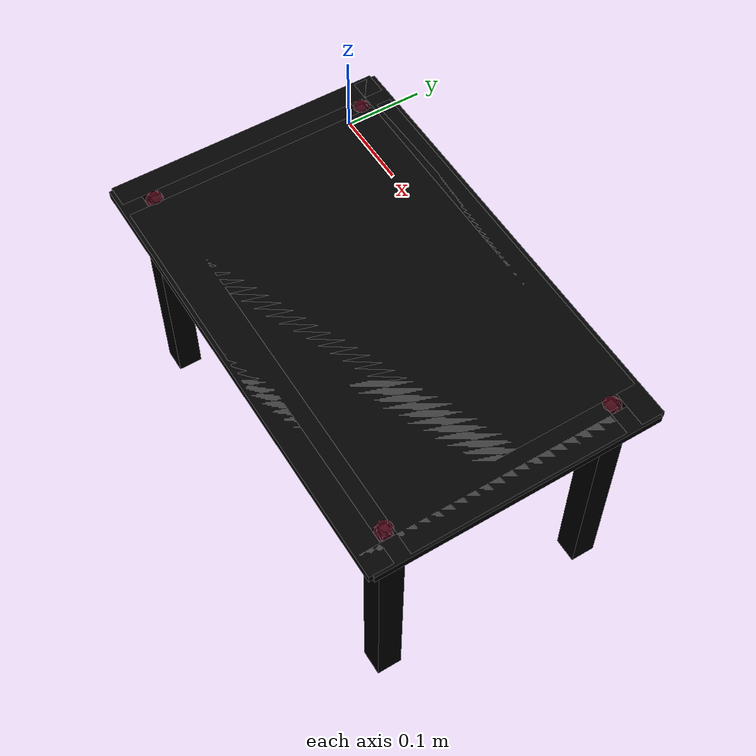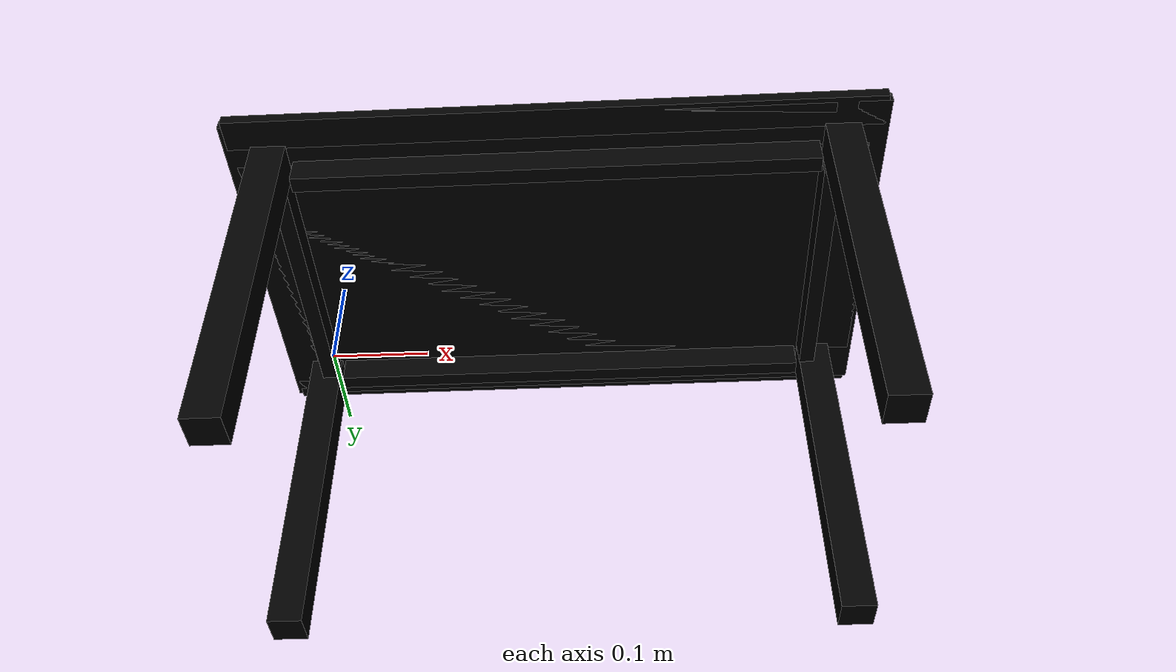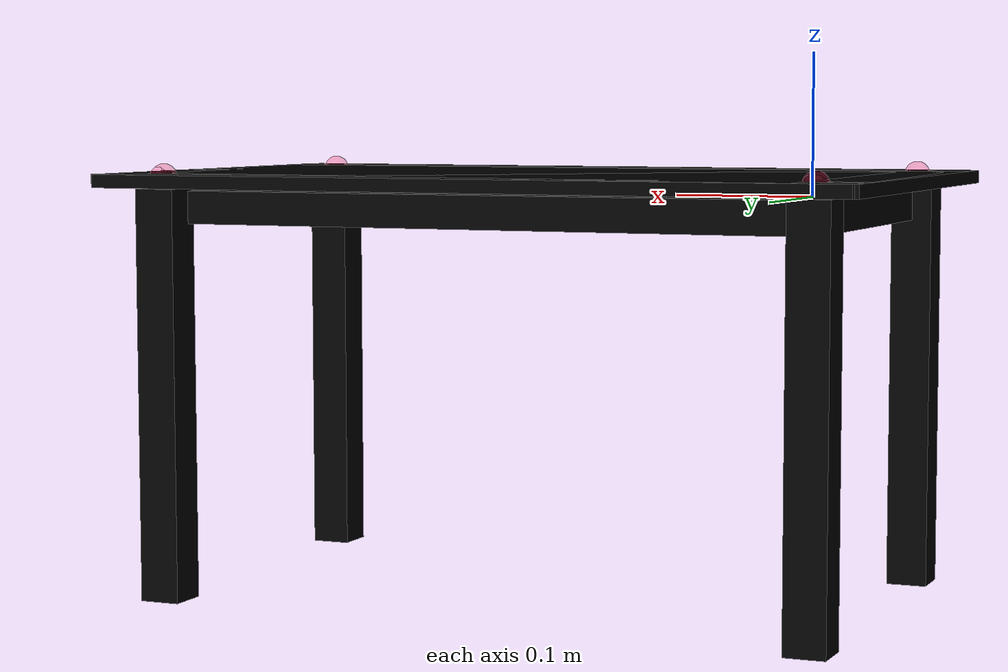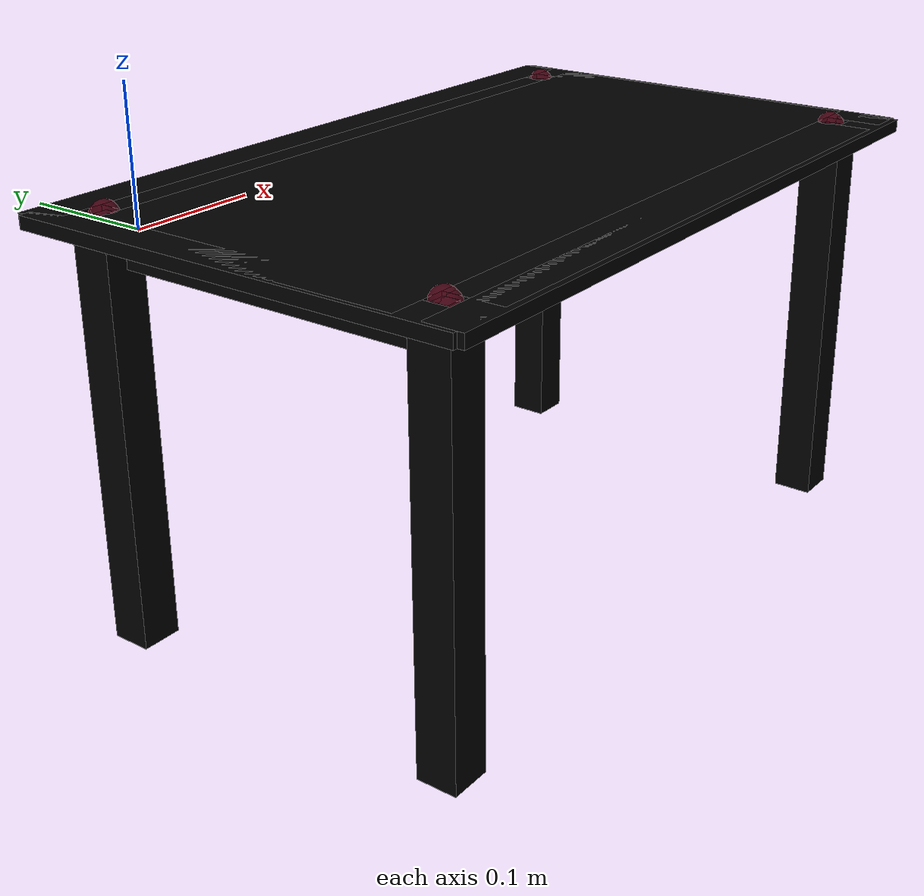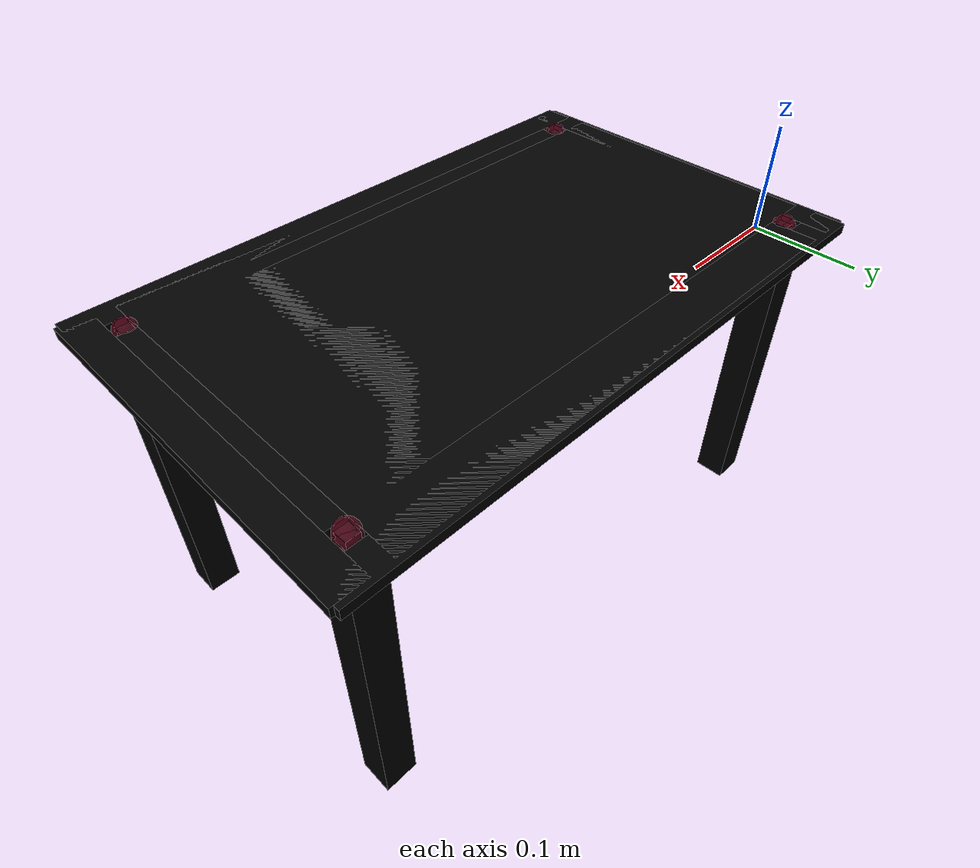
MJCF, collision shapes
<mujoco model="table_bjorkudden_0207">
    <custom>
        <numeric data="0.166806 0.063341 0.015845 0.707107 0.0 0.707107 0.0" name="0_part0_initpos"/>
        <numeric data="-0.23001 0.109956 0.018558 0.0 -0.707065 0.707148 0.0" name="4_part4_initpos"/>
        <numeric data="0.166764 -0.07 0.015845 0.5 -0.5 0.5 -0.5" name="3_part3_initpos"/>
        <numeric data="0.175697 0.33 0.015845 0.5 -0.5 0.5 -0.5" name="2_part2_initpos"/>
        <numeric data="0.176754 0.2 0.015845 0.707107 0.0 0.707107 0.0" name="1_part1_initpos"/>
    </custom>
    <asset>
        <mesh file="table_bjorkudden_0207/1.stl" name="part1" scale="0.0005 0.0005 0.0005"/>
        <mesh file="table_bjorkudden_0207/5.stl" name="part5" scale="0.0005 0.0005 0.0005"/>
        <mesh file="table_bjorkudden_0207/4.stl" name="part4" scale="0.0005 0.0005 0.0005"/>
        <mesh file="table_bjorkudden_0207/3.stl" name="part3" scale="0.0005 0.0005 0.0005"/>
        <mesh file="table_bjorkudden_0207/2.stl" name="part2" scale="0.0005 0.0005 0.0005"/>
    </asset>
    <equality>
        <weld active="false" body1="0_part0" body2="4_part4" solimp="1 1 0.5" solref="0.01 0.3"/>
        <weld active="false" body1="2_part2" body2="4_part4" solimp="1 1 0.5" solref="0.01 0.3"/>
        <weld active="false" body1="3_part3" body2="4_part4" solimp="1 1 0.5" solref="0.01 0.3"/>
        <weld active="false" body1="1_part1" body2="4_part4" solimp="1 1 0.5" solref="0.01 0.3"/>
        <weld active="false" body1="0_part0" body2="4_part4" solimp="1 1 0.5" solref="0.01 0.3"/>
        <weld active="false" body1="2_part2" body2="4_part4" solimp="1 1 0.5" solref="0.01 0.3"/>
        <weld active="false" body1="1_part1" body2="4_part4" solimp="1 1 0.5" solref="0.01 0.3"/>
        <weld active="false" body1="3_part3" body2="4_part4" solimp="1 1 0.5" solref="0.01 0.3"/>
    </equality>
    <worldbody>
        <body name="0_part0" pos="0.5064125 -0.263525 -0.15875" quat="1 0 0 0">
            <site group="1" name="0_part0_ltgt_site0" pos="0 -0.02 0" rgba="0 0 0 0" size="0.01 0.01 0.01"
                  type="sphere"/>
            <site group="1" name="0_part0_rtgt_site0" pos="0 0.02 0" rgba="0 0 0 0" size="0.01 0.01 0.01"
                  type="sphere"/>
            <geom conaffinity="0" contype="0" density="0" mesh="part1" name="0_part0_mesh" pos="0.0 0.0 0.0"
                  rgba="0.82 0.71 0.55 1" type="mesh"/>
            <site name="0_part0_horizontal_radius_site" pos="0.0 0.0 0.0" quat="1 0 0 0" rgba="0 0 0 0"
                  size="0.0005"/>
            <site name="0_part0_top_site" pos="0.0 0.0 0.15875" quat="1 0 0 0" rgba="0 0 0 0" size="0.0005"/>
            <site name="0_part0_bottom_site" pos="0.0 0.0 -0.15875" quat="1 0 0 0" rgba="0 0 0 0" size="0.0005"/>
            <site name="0_part0_corner_site8" pos="-0.015875 0.015875 0.15875" quat="1 0 0 0" rgba="0 0 0 0"
                  size="0.01"/>
            <site name="0_part0_corner_site7" pos="0.015875 0.015875 0.15875" quat="1 0 0 0" rgba="0 0 0 0"
                  size="0.01"/>
            <site name="0_part0_corner_site6" pos="0.015875 -0.015875 0.15875" quat="1 0 0 0" rgba="0 0 0 0"
                  size="0.01"/>
            <site name="0_part0_corner_site5" pos="-0.015875 -0.015875 0.15875" quat="1 0 0 0" rgba="0 0 0 0"
                  size="0.01"/>
            <site name="0_part0_corner_site4" pos="-0.015875 0.015875 -0.15875" quat="1 0 0 0" rgba="0 0 0 0"
                  size="0.01"/>
            <site name="0_part0_corner_site3" pos="0.015875 0.015875 -0.15875" quat="1 0 0 0" rgba="0 0 0 0"
                  size="0.01"/>
            <site name="0_part0_corner_site2" pos="0.015875 -0.015875 -0.15875" quat="1 0 0 0" rgba="0 0 0 0"
                  size="0.01"/>
            <site name="0_part0_corner_site1" pos="-0.015875 -0.015875 -0.15875" quat="1 0 0 0" rgba="0 0 0 0"
                  size="0.01"/>
            <site name="leg-top,0,90,180,270,conn_site4" pos="-0.000412505 0.000149995 0.168" quat="1 0 0 0"
                  rgba="0.9019 0.0980 0.2941 0.3" size="0.01"/>
            <geom density="50" name="noviz_collision_0_part0_0" pos="0.0 0.0 0.0" quat="1 0 0 0" rgba="0 0 0 0"
                  size="0.015875 0.015875 0.15875" solref="0.001 1" type="box"/>
            <geom density="50" name="noviz_collision_0_part0_1" pos="0.0 0.0 0.163" quat="1 0 0 0" rgba="0 0 0 0"
                  size="0.006 0.006 0.005" solref="0.001 1" type="box"/>
        </body>
        <body name="4_part4" pos="0.2492375122 -0.1206500061 -0.00698499845" quat="1 0 0 0">
            <freejoint/>
            <geom conaffinity="0" contype="0" density="0" mesh="part5" name="4_part4_mesh" pos="0.0 0.0 0.0"
                  rgba="0.82 0.71 0.55 1" type="mesh"/>
            <site name="4_part4_horizontal_radius_site" pos="0.0 0.0 0.0" quat="1 0 0 0" rgba="0 0 0 0"
                  size="0.0005"/>
            <site name="4_part4_top_site" pos="0.0 0.0 0.019685" quat="1 0 0 0" rgba="0 0 0 0" size="0.0005"/>
            <site name="4_part4_bottom_site" pos="0.0 0.0 -0.019685" quat="1 0 0 0" rgba="0 0 0 0" size="0.0005"/>
            <site name="4_part4_corner_site8" pos="-0.2985 0.18415 0.019685" quat="1 0 0 0" rgba="0 0 0 0"
                  size="0.01"/>
            <site name="4_part4_corner_site7" pos="0.2985 0.18415 0.019685" quat="1 0 0 0" rgba="0 0 0 0"
                  size="0.01"/>
            <site name="4_part4_corner_site6" pos="0.2985 -0.18415 0.019685" quat="1 0 0 0" rgba="0 0 0 0"
                  size="0.01"/>
            <site name="4_part4_corner_site5" pos="-0.2985 -0.18415 0.019685" quat="1 0 0 0" rgba="0 0 0 0"
                  size="0.01"/>
            <site name="4_part4_corner_site4" pos="-0.2985 0.18415 -0.019685" quat="1 0 0 0" rgba="0 0 0 0"
                  size="0.01"/>
            <site name="4_part4_corner_site3" pos="0.2985 0.18415 -0.019685" quat="1 0 0 0" rgba="0 0 0 0"
                  size="0.01"/>
            <site name="4_part4_corner_site2" pos="0.2985 -0.18415 -0.019685" quat="1 0 0 0" rgba="0 0 0 0"
                  size="0.01"/>
            <site name="4_part4_corner_site1" pos="-0.2985 -0.18415 -0.019685" quat="1 0 0 0" rgba="0 0 0 0"
                  size="0.01"/>
            <site name="top-leg,0,90,180,270,conn_site4" pos="0.2577625 -0.1445 0.015" quat="1 0 0 0"
                  rgba="0.9019 0.0980 0.2941 0.3" size="0.01"/>
            <site name="top-leg,0,90,180,270,conn_site3" pos="0.2577625 0.1445 0.015" quat="1 0 0 0"
                  rgba="0.9019 0.0980 0.2941 0.3" size="0.01"/>
            <site name="top-leg,0,90,180,270,conn_site2" pos="-0.2577375 0.1445 0.015" quat="1 0 0 0"
                  rgba="0.9019 0.0980 0.2941 0.3" size="0.01"/>
            <site name="top-leg,0,90,180,270,conn_site1" pos="-0.2577375 -0.1445 0.015" quat="1 0 0 0"
                  rgba="0.9019 0.0980 0.2941 0.3" size="0.01"/>
            <geom density="50" name="noviz_collision_4_part4_1" pos="0 0.13415 -0.007015" quat="1 0 0 0"
                  rgba="0 0 0 0"
                  size="0.23750 0.0075 0.0125" solref="0.001 1" type="box"/>
            <geom density="50" name="noviz_collision_4_part4_2" pos="0 -0.13435 -0.007015" quat="1 0 0 0"
                  rgba="0 0 0 0"
                  size="0.23750 0.0075 0.0125" solref="0.001 1" type="box"/>
            <geom density="50" name="noviz_collision_4_part4_3" pos="0.2477625 0 -0.007015" quat="1 0 0 0"
                  rgba="0 0 0 0" size="0.0075 0.125 0.0125" solref="0.001 1" type="box"/>
            <geom density="50" name="noviz_collision_4_part4_4" pos="-0.2507375 0 -0.007015" quat="1 0 0 0"
                  rgba="0 0 0 0" size="0.0075 0.125 0.0125" solref="0.001 1" type="box"/>
            <geom density="50" name="noviz_collision_4_part4_5" pos="0 0 0.013485" quat="1 0 0 0" rgba="0 0 0 0"
                  size="0.25 0.18 0.005" solref="0.001 1" type="box"/>
            <geom density="50" name="noviz_collision_4_part4_6" pos="0 0 0.013485" quat="1 0 0 0" rgba="0 0 0 0"
                  size="0.295 0.135 0.005" solref="0.001 1" type="box"/>
            <geom density="50" name="noviz_collision_4_part4_7" pos="0 -0.17 0.013485" quat="1 0 0 0" rgba="0 0 0 0"
                  size="0.295 0.015 0.005" solref="0.001 1" type="box"/>
            <geom density="50" name="noviz_collision_4_part4_8" pos="0 0.17 0.013485" quat="1 0 0 0" rgba="0 0 0 0"
                  size="0.295 0.015 0.005" solref="0.001 1" type="box"/>
            <geom density="50" name="noviz_collision_4_part4_9" pos="-0.2834 0 0.013485" quat="1 0 0 0"
                  rgba="0 0 0 0"
                  size="0.015 0.18 0.005" solref="0.001 1" type="box"/>
            <geom density="50" name="noviz_collision_4_part4_10" pos="0.2834 0 0.013485" quat="1 0 0 0"
                  rgba="0 0 0 0"
                  size="0.015 0.18 0.005" solref="0.001 1" type="box"/>
        </body>
        <body name="3_part3" pos="-0.0079375 -0.263525 -0.15875" quat="1 0 0 0">
            <freejoint/>
            <geom conaffinity="0" contype="0" density="0" mesh="part4" name="3_part3_mesh" pos="0.0 0.0 0.0"
                  rgba="0.82 0.71 0.55 1" type="mesh"/>
            <site group="1" name="3_part3_ltgt_site0" pos="-0.02 0 0" rgba="0 0 0 0" size="0.01 0.01 0.01"
                  type="sphere"/>
            <site group="1" name="3_part3_rtgt_site0" pos="0.02 0 0" rgba="0 0 0 0" size="0.01 0.01 0.01"
                  type="sphere"/>
            <site name="3_part3_horizontal_radius_site" pos="0.0 0.0 0.0" quat="1 0 0 0" rgba="0 0 0 0"
                  size="0.0005"/>
            <site name="3_part3_top_site" pos="0.0 0.0 0.15875" quat="1 0 0 0" rgba="0 0 0 0" size="0.0005"/>
            <site name="3_part3_bottom_site" pos="0.0 0.0 -0.15875" quat="1 0 0 0" rgba="0 0 0 0" size="0.0005"/>
            <site name="3_part3_corner_site8" pos="-0.015875 0.015875 0.15875" quat="1 0 0 0" rgba="0 0 0 0"
                  size="0.01"/>
            <site name="3_part3_corner_site7" pos="0.015875 0.015875 0.15875" quat="1 0 0 0" rgba="0 0 0 0"
                  size="0.01"/>
            <site name="3_part3_corner_site6" pos="0.015875 -0.015875 0.15875" quat="1 0 0 0" rgba="0 0 0 0"
                  size="0.01"/>
            <site name="3_part3_corner_site5" pos="-0.015875 -0.015875 0.15875" quat="1 0 0 0" rgba="0 0 0 0"
                  size="0.01"/>
            <site name="3_part3_corner_site4" pos="-0.015875 0.015875 -0.15875" quat="1 0 0 0" rgba="0 0 0 0"
                  size="0.01"/>
            <site name="3_part3_corner_site3" pos="0.015875 0.015875 -0.15875" quat="1 0 0 0" rgba="0 0 0 0"
                  size="0.01"/>
            <site name="3_part3_corner_site2" pos="0.015875 -0.015875 -0.15875" quat="1 0 0 0" rgba="0 0 0 0"
                  size="0.01"/>
            <site name="3_part3_corner_site1" pos="-0.015875 -0.015875 -0.15875" quat="1 0 0 0" rgba="0 0 0 0"
                  size="0.01"/>
            <site name="leg-top,0,90,180,270,conn_site1" pos="-0.0005625 0.00015 0.168" quat="1 0 0 0"
                  rgba="0.9019 0.0980 0.2941 0.3" size="0.01"/>
            <geom density="50" name="noviz_collision_3_part3_0" pos="0.0 0.0 0.0" quat="1 0 0 0" rgba="0 0 0 0"
                  size="0.015875 0.015875 0.15875" solref="0.001 1" type="box"/>
            <geom density="50" name="noviz_collision_3_part3_1" pos="0.0 0.0 0.163" quat="1 0 0 0" rgba="0 0 0 0"
                  size="0.006 0.006 0.005" solref="0.001 1" type="box"/>
        </body>
        <body name="2_part2" pos="-0.0079375 0.022225 -0.15875" quat="1 0 0 0">
            <freejoint/>
            <geom conaffinity="0" contype="0" density="0" mesh="part3" name="2_part2_mesh" pos="0.0 0.0 0.0"
                  rgba="0.82 0.71 0.55 1" type="mesh"/>
            <site group="1" name="2_part2_ltgt_site0" pos="-0.02 0 0" rgba="0 0 0 0" size="0.01 0.01 0.01"
                  type="sphere"/>
            <site group="1" name="2_part2_rtgt_site0" pos="0.02 0 0" rgba="0 0 0 0" size="0.01 0.01 0.01"
                  type="sphere"/>
            <site name="2_part2_horizontal_radius_site" pos="0.0 0.0 0.0" quat="1 0 0 0" rgba="0 0 0 0"
                  size="0.0005"/>
            <site name="2_part2_top_site" pos="0.0 0.0 0.15875" quat="1 0 0 0" rgba="0 0 0 0" size="0.0005"/>
            <site name="2_part2_bottom_site" pos="0.0 0.0 -0.15875" quat="1 0 0 0" rgba="0 0 0 0" size="0.0005"/>
            <site name="2_part2_corner_site8" pos="-0.015875 0.015875 0.15875" quat="1 0 0 0" rgba="0 0 0 0"
                  size="0.01"/>
            <site name="2_part2_corner_site7" pos="0.015875 0.015875 0.15875" quat="1 0 0 0" rgba="0 0 0 0"
                  size="0.01"/>
            <site name="2_part2_corner_site6" pos="0.015875 -0.015875 0.15875" quat="1 0 0 0" rgba="0 0 0 0"
                  size="0.01"/>
            <site name="2_part2_corner_site5" pos="-0.015875 -0.015875 0.15875" quat="1 0 0 0" rgba="0 0 0 0"
                  size="0.01"/>
            <site name="2_part2_corner_site4" pos="-0.015875 0.015875 -0.15875" quat="1 0 0 0" rgba="0 0 0 0"
                  size="0.01"/>
            <site name="2_part2_corner_site3" pos="0.015875 0.015875 -0.15875" quat="1 0 0 0" rgba="0 0 0 0"
                  size="0.01"/>
            <site name="2_part2_corner_site2" pos="0.015875 -0.015875 -0.15875" quat="1 0 0 0" rgba="0 0 0 0"
                  size="0.01"/>
            <site name="2_part2_corner_site1" pos="-0.015875 -0.015875 -0.15875" quat="1 0 0 0" rgba="0 0 0 0"
                  size="0.01"/>
            <site name="leg-top,0,90,180,270,conn_site2" pos="-0.0005625 -0.00022500 0.168" quat="1 0 0 0"
                  rgba="0.9019 0.0980 0.2941 0.3" size="0.01"/>
            <geom density="50" name="noviz_collision_2_part2_0" pos="0.0 0.0 0.0" quat="1 0 0 0" rgba="0 0 0 0"
                  size="0.015875 0.015875 0.15875" solref="0.001 1" type="box"/>
            <geom density="50" name="noviz_collision_2_part2_1" pos="0.0 0.0 0.163" quat="1 0 0 0" rgba="0 0 0 0"
                  size="0.006 0.006 0.005" solref="0.001 1" type="box"/>
        </body>
        <body name="1_part1" pos="0.5064125 0.022225 -0.15875" quat="1 0 0 0">
            <freejoint/>
            <geom conaffinity="0" contype="0" density="0" mesh="part2" name="1_part1_mesh" pos="0.0 0.0 0.0"
                  rgba="0.82 0.71 0.55 1" type="mesh"/>
            <site group="1" name="1_part1_ltgt_site0" pos="0 -0.02 0" rgba="0 0 0 0" size="0.01 0.01 0.01"
                  type="sphere"/>
            <site group="1" name="1_part1_rtgt_site0" pos="0 0.02 0" rgba="0 0 0 0" size="0.01 0.01 0.01"
                  type="sphere"/>
            <site name="1_part1_horizontal_radius_site" pos="0.0 0.0 0.0" quat="1 0 0 0" rgba="0 0 0 0"
                  size="0.0005"/>
            <site name="1_part1_top_site" pos="0.0 0.0 0.15875" quat="1 0 0 0" rgba="0 0 0 0" size="0.0005"/>
            <site name="1_part1_bottom_site" pos="0.0 0.0 -0.15875" quat="1 0 0 0" rgba="0 0 0 0" size="0.0005"/>
            <site name="1_part1_corner_site8" pos="-0.015875 0.015875 0.15875" quat="1 0 0 0" rgba="0 0 0 0"
                  size="0.01"/>
            <site name="1_part1_corner_site7" pos="0.015875 0.015875 0.15875" quat="1 0 0 0" rgba="0 0 0 0"
                  size="0.01"/>
            <site name="1_part1_corner_site6" pos="0.015875 -0.015875 0.15875" quat="1 0 0 0" rgba="0 0 0 0"
                  size="0.01"/>
            <site name="1_part1_corner_site5" pos="-0.015875 -0.015875 0.15875" quat="1 0 0 0" rgba="0 0 0 0"
                  size="0.01"/>
            <site name="1_part1_corner_site4" pos="-0.015875 0.015875 -0.15875" quat="1 0 0 0" rgba="0 0 0 0"
                  size="0.01"/>
            <site name="1_part1_corner_site3" pos="0.015875 0.015875 -0.15875" quat="1 0 0 0" rgba="0 0 0 0"
                  size="0.01"/>
            <site name="1_part1_corner_site2" pos="0.015875 -0.015875 -0.15875" quat="1 0 0 0" rgba="0 0 0 0"
                  size="0.01"/>
            <site name="1_part1_corner_site1" pos="-0.015875 -0.015875 -0.15875" quat="1 0 0 0" rgba="0 0 0 0"
                  size="0.01"/>
            <site name="leg-top,0,90,180,270,conn_site3" pos="0 0 0.168" quat="1 0 0 0"
                  rgba="0.9019 0.0980 0.2941 0.3"
                  size="0.01"/>
            <geom density="50" name="noviz_collision_1_part1_0" pos="0.0 0.0 0.0" quat="1 0 0 0" rgba="0 0 0 0"
                  size="0.015875 0.015875 0.15875" solref="0.001 1" type="box"/>
            <geom density="50" name="noviz_collision_1_part1_1" pos="0.0 0.0 0.163" quat="1 0 0 0" rgba="0 0 0 0"
                  size="0.006 0.006 0.005" solref="0.001 1" type="box"/>
        </body>
    </worldbody>
    <actuator/>
    <sensor/>
    <contact/>
    <default/>
</mujoco>
